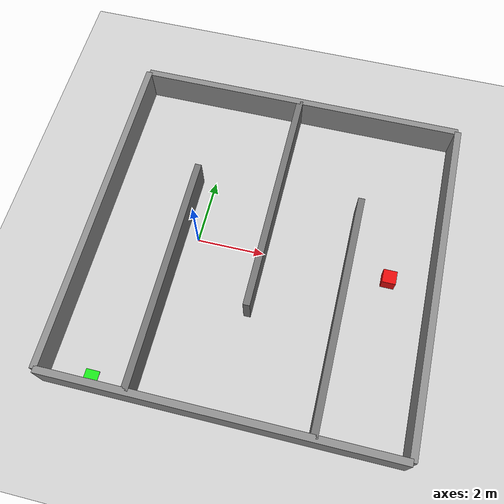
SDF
<?xml version="1.0" ?>
<sdf version="1.9">
  <world name="camera_maze_world">

    <physics name="1ms" type="ignored">
      <max_step_size>0.001</max_step_size>
      <real_time_factor>1.0</real_time_factor>
    </physics>

    <plugin filename="gz-sim-physics-system" name="gz::sim::systems::Physics"></plugin>
    <plugin filename="gz-sim-sensors-system" name="gz::sim::systems::Sensors">
      <render_engine>ogre2</render_engine>
    </plugin>
    <plugin filename="gz-sim-scene-broadcaster-system" name="gz::sim::systems::SceneBroadcaster"></plugin>
    <plugin filename="gz-sim-user-commands-system" name="gz::sim::systems::UserCommands"></plugin>
    <plugin filename="gz-sim-contact-system" name="gz::sim::systems::Contact"></plugin>

    <light type="directional" name="sun">
      <cast_shadows>true</cast_shadows>
      <pose>0 0 10 0 0 0</pose>
      <diffuse>0.8 0.8 0.8 1</diffuse>
      <specular>0.2 0.2 0.2 1</specular>
      <attenuation>
        <range>1000</range>
        <constant>0.9</constant>
        <linear>0.01</linear>
        <quadratic>0.001</quadratic>
      </attenuation>
      <direction>-0.5 0.1 -0.9</direction>
    </light>

    <model name="ground_plane">
      <static>true</static>
      <link name="link">
        <collision name="collision">
          <pose>2 0 0 0 0 0</pose>
          <geometry><plane><normal>0 0 1</normal><size>16 16</size></plane></geometry>
        </collision>
        <visual name="visual">
          <pose>2 0 0 0 0 0</pose>
          <geometry><plane><normal>0 0 1</normal><size>16 16</size></plane></geometry>
          <material>
            <ambient>0.8 0.8 0.8 1</ambient>
            <diffuse>0.8 0.8 0.8 1</diffuse>
            <specular>0.8 0.8 0.8 1</specular>
          </material>
        </visual>
      </link>
    </model>

    <!-- Outer walls (unchanged) -->
    <model name="wall_west">
      <static>true</static>
      <pose>-3 0 0.5 0 0 0</pose>
      <link name="link">
        <collision name="collision"><geometry><box><size>0.2 10 1</size></box></geometry></collision>
        <visual name="visual">
          <geometry><box><size>0.2 10 1</size></box></geometry>
          <material><ambient>0.55 0.55 0.55 1</ambient><diffuse>0.55 0.55 0.55 1</diffuse></material>
        </visual>
      </link>
    </model>

    <model name="wall_east">
      <static>true</static>
      <pose>7 0 0.5 0 0 0</pose>
      <link name="link">
        <collision name="collision"><geometry><box><size>0.2 10 1</size></box></geometry></collision>
        <visual name="visual">
          <geometry><box><size>0.2 10 1</size></box></geometry>
          <material><ambient>0.55 0.55 0.55 1</ambient><diffuse>0.55 0.55 0.55 1</diffuse></material>
        </visual>
      </link>
    </model>

    <model name="wall_north">
      <static>true</static>
      <pose>2 5 0.5 0 0 0</pose>
      <link name="link">
        <collision name="collision"><geometry><box><size>10 0.2 1</size></box></geometry></collision>
        <visual name="visual">
          <geometry><box><size>10 0.2 1</size></box></geometry>
          <material><ambient>0.55 0.55 0.55 1</ambient><diffuse>0.55 0.55 0.55 1</diffuse></material>
        </visual>
      </link>
    </model>

    <model name="wall_south">
      <static>true</static>
      <pose>2 -5 0.5 0 0 0</pose>
      <link name="link">
        <collision name="collision"><geometry><box><size>10 0.2 1</size></box></geometry></collision>
        <visual name="visual">
          <geometry><box><size>10 0.2 1</size></box></geometry>
          <material><ambient>0.55 0.55 0.55 1</ambient><diffuse>0.55 0.55 0.55 1</diffuse></material>
        </visual>
      </link>
    </model>

    <!-- Divider 1 at x = -0.5 (was x = 1). Gap at the north end, y = 2 to 5 -->
    <model name="divider1">
      <static>true</static>
      <pose>-0.5 -1.5 0.5 0 0 0</pose>
      <link name="link">
        <collision name="collision"><geometry><box><size>0.2 7 1</size></box></geometry></collision>
        <visual name="visual">
          <geometry><box><size>0.2 7 1</size></box></geometry>
          <material><ambient>0.45 0.45 0.45 1</ambient><diffuse>0.45 0.45 0.45 1</diffuse></material>
        </visual>
      </link>
    </model>

    <!-- Divider 2 at x = 2 (was x = 3). Gap at the south end, y = -5 to -2 -->
    <model name="divider2">
      <static>true</static>
      <pose>2 1.5 0.5 0 0 0</pose>
      <link name="link">
        <collision name="collision"><geometry><box><size>0.2 7 1</size></box></geometry></collision>
        <visual name="visual">
          <geometry><box><size>0.2 7 1</size></box></geometry>
          <material><ambient>0.45 0.45 0.45 1</ambient><diffuse>0.45 0.45 0.45 1</diffuse></material>
        </visual>
      </link>
    </model>

    <!-- Divider 3 at x = 4.5 (was x = 5). Gap at the north end, y = 2 to 5 -->
    <model name="divider3">
      <static>true</static>
      <pose>4.5 -1.5 0.5 0 0 0</pose>
      <link name="link">
        <collision name="collision"><geometry><box><size>0.2 7 1</size></box></geometry></collision>
        <visual name="visual">
          <geometry><box><size>0.2 7 1</size></box></geometry>
          <material><ambient>0.45 0.45 0.45 1</ambient><diffuse>0.45 0.45 0.45 1</diffuse></material>
        </visual>
      </link>
    </model>

    <!-- Goal: Red cube, in the open lane east of divider 3 -->
    <model name="target">
      <static>true</static>
      <pose>5.75 0 0.2 0 0 0</pose>
      <link name="link">
        <collision name="collision">
          <geometry><box><size>0.4 0.4 0.4</size></box></geometry>
        </collision>
        <visual name="visual">
          <geometry><box><size>0.4 0.4 0.4</size></box></geometry>
          <material>
            <ambient>0.9 0.05 0.05 1</ambient>
            <diffuse>0.9 0.05 0.05 1</diffuse>
            <specular>0.3 0.3 0.3 1</specular>
          </material>
        </visual>
      </link>
    </model>

    <!-- Robot spawn marker:  -->
    <model name="robot_spawn_marker">
      <static>true</static>
      <pose>-1.75 -4.7 0.02 0 0 0</pose>
      <link name="link">
        <visual name="visual">
          <geometry><box><size>0.4 0.4 0.02</size></box></geometry>
          <material>
            <ambient>0.1 0.9 0.1 1</ambient>
            <diffuse>0.1 0.9 0.1 1</diffuse>
          </material>
        </visual>
      </link>
    </model>

  </world>
</sdf>
